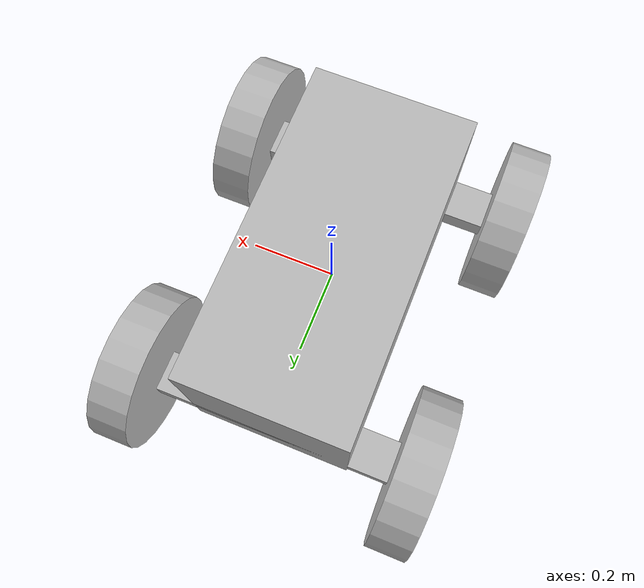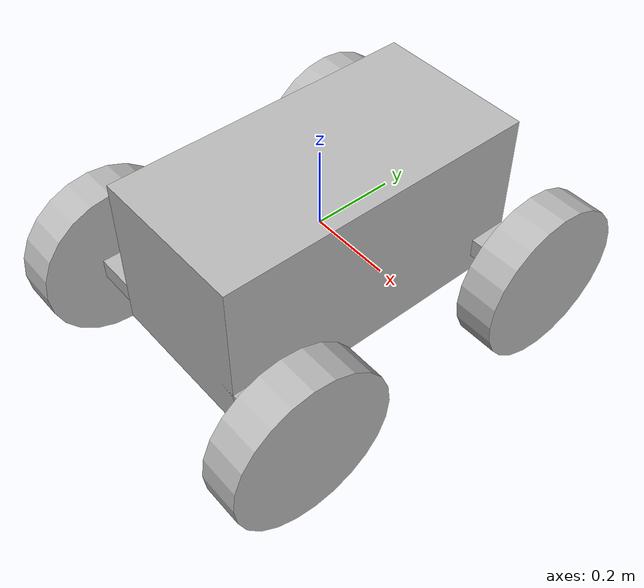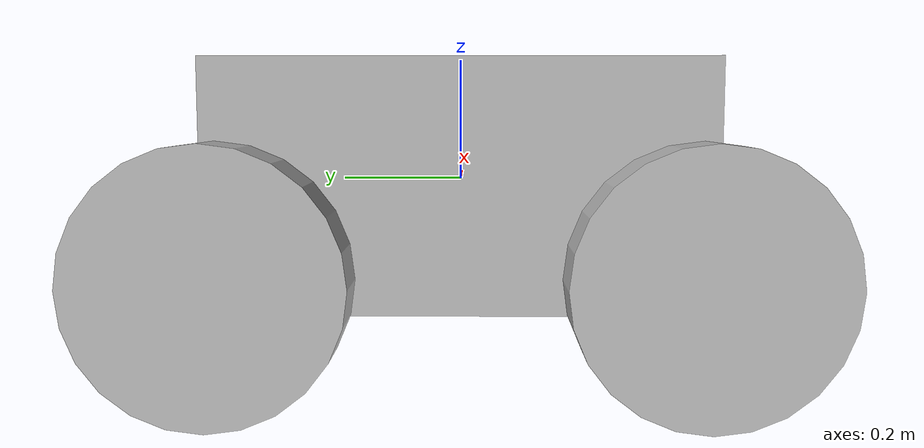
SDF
<sdf version='1.7'>
  <model name='car_suspension'>
    <link name='car_body_1'>
      <inertial>
        <pose>0 0 0 0 -0 0</pose>
        <mass>100</mass>
        <inertia>
          <ixx>10</ixx>
          <ixy>0</ixy>
          <ixz>0</ixz>
          <iyy>10</iyy>
          <iyz>0</iyz>
          <izz>10</izz>
        </inertia>
      </inertial>
      <collision name='car_body_collision'>
        <pose>0 0 0 0 -0 0</pose>
        <geometry>
          <box>
            <size>0.4 0.8 0.2</size>
          </box>
        </geometry>
      </collision>
      <visual name='car_body_visual'>
        <pose>0 0 0 0 -0 0</pose>
        <geometry>
          <box>
            <size>0.4 0.8 0.4</size>
          </box>
        </geometry>
      </visual>
    </link>
    <joint name='suspension_back' type='prismatic'>
      <pose relative_to='car_body_1'>0 -0.35 0 0 -0 0</pose>
      <parent>car_body_1</parent>
      <child>back_wheel_body</child>
      <axis>
        <xyz>0 0 1</xyz>
        <limit>
          <lower>-0.05</lower>
          <upper>0.05</upper>
          <effort>10000</effort>
          <velocity>2</velocity>
        </limit>
        <dynamics>
          <damping>0.8</damping>
          <friction>0</friction>
          <spring_reference>0</spring_reference>
          <spring_stiffness>0</spring_stiffness>
        </dynamics>
      </axis>
    </joint>
    <link name='back_wheel_body'>
      <pose relative_to='suspension_back'>0 0 0 0 -0 0</pose>
      <inertial>
        <pose>0 0 0 0 -0 0</pose>
        <mass>1</mass>
        <inertia>
          <ixx>0.1</ixx>
          <ixy>0</ixy>
          <ixz>0</ixz>
          <iyy>0.1</iyy>
          <iyz>0</iyz>
          <izz>0.1</izz>
        </inertia>
      </inertial>
      <collision name='back_wheel_body_collision'>
        <pose>0 0 -0.125 0 -0 0</pose>
        <geometry>
          <box>
            <size>0.6 0.1 0.05</size>
          </box>
        </geometry>
      </collision>
      <visual name='back_wheel_body_visual'>
        <pose>0 0 -0.125 0 -0 0</pose>
        <geometry>
          <box>
            <size>0.6 0.1 0.05</size>
          </box>
        </geometry>
      </visual>
    </link>
    <joint name='back_body_to_left_wheel' type='revolute'>
      <pose relative_to='back_wheel_body'>-0.3 0 -0.125 0 -0 0</pose>
      <parent>back_wheel_body</parent>
      <child>back_wheel_left</child>
      <axis>
        <xyz>1 0 0</xyz>
        <limit>
          <effort>10000</effort>
          <velocity>2</velocity>
          <lower>-1e+16</lower>
          <upper>1e+16</upper>
        </limit>
        <dynamics>
          <spring_reference>0</spring_reference>
          <spring_stiffness>0</spring_stiffness>
        </dynamics>
      </axis>
    </joint>
    <link name='back_wheel_left'>
      <pose relative_to='back_body_to_left_wheel'>0 0 0 0 -0 0</pose>
      <inertial>
        <pose>0 0 0 0 -0 0</pose>
        <mass>1</mass>
        <inertia>
          <ixx>0.1</ixx>
          <ixy>0</ixy>
          <ixz>0</ixz>
          <iyy>0.1</iyy>
          <iyz>0</iyz>
          <izz>0.1</izz>
        </inertia>
      </inertial>
      <collision name='back_wheel_left_collision'>
        <pose>-0.05 0 0 0 -1.5708 0</pose>
        <geometry>
          <cylinder>
            <length>0.1</length>
            <radius>0.2</radius>
          </cylinder>
        </geometry>
        <surface>
          <friction>
            <ode>
              <mu>0.7</mu>
              <mu2>0.7</mu2>
              <fdir1>1 0 0</fdir1>
            </ode>
          </friction>
          <contact>
            <ode>
              <kp>1e+13</kp>
              <kd>1</kd>
              <max_vel>10</max_vel>
            </ode>
          </contact>
          <bounce>
            <restitution_coefficient>0</restitution_coefficient>
            <threshold>0</threshold>
          </bounce>
        </surface>
      </collision>
      <visual name='back_wheel_left_visual'>
        <pose>-0.05 0 0 0 -1.5708 0</pose>
        <geometry>
          <cylinder>
            <length>0.1</length>
            <radius>0.2</radius>
          </cylinder>
        </geometry>
      </visual>
    </link>
    <joint name='back_body_to_right_wheel' type='revolute'>
      <pose relative_to='back_wheel_body'>0.3 0 -0.125 0 -0 0</pose>
      <parent>back_wheel_body</parent>
      <child>back_wheel_right</child>
      <axis>
        <xyz>1 0 0</xyz>
        <limit>
          <effort>10000</effort>
          <velocity>2</velocity>
          <lower>-1e+16</lower>
          <upper>1e+16</upper>
        </limit>
        <dynamics>
          <spring_reference>0</spring_reference>
          <spring_stiffness>0</spring_stiffness>
        </dynamics>
      </axis>
    </joint>
    <link name='back_wheel_right'>
      <pose relative_to='back_body_to_right_wheel'>0 0 0 0 -0 0</pose>
      <inertial>
        <pose>0 0 0 0 -0 0</pose>
        <mass>1</mass>
        <inertia>
          <ixx>0.1</ixx>
          <ixy>0</ixy>
          <ixz>0</ixz>
          <iyy>0.1</iyy>
          <iyz>0</iyz>
          <izz>0.1</izz>
        </inertia>
      </inertial>
      <collision name='back_wheel_right_collision'>
        <pose>0.05 0 0 0 -1.5708 0</pose>
        <geometry>
          <cylinder>
            <length>0.1</length>
            <radius>0.2</radius>
          </cylinder>
        </geometry>
        <surface>
          <friction>
            <ode>
              <mu>0.7</mu>
              <mu2>0.7</mu2>
              <fdir1>1 0 0</fdir1>
            </ode>
          </friction>
          <contact>
            <ode>
              <kp>1e+13</kp>
              <kd>1</kd>
              <max_vel>10</max_vel>
            </ode>
          </contact>
          <bounce>
            <restitution_coefficient>0</restitution_coefficient>
            <threshold>0</threshold>
          </bounce>
        </surface>
      </collision>
      <visual name='back_wheel_right_visual'>
        <pose>0.05 0 0 0 -1.5708 0</pose>
        <geometry>
          <cylinder>
            <length>0.1</length>
            <radius>0.2</radius>
          </cylinder>
        </geometry>
      </visual>
    </link>
    <joint name='suspension_front' type='prismatic'>
      <pose relative_to='car_body_1'>0 0.35 0 0 -0 0</pose>
      <parent>car_body_1</parent>
      <child>front_wheel_body</child>
      <axis>
        <xyz>0 0 1</xyz>
        <limit>
          <lower>-0.05</lower>
          <upper>0.05</upper>
          <effort>10000</effort>
          <velocity>2</velocity>
        </limit>
        <dynamics>
          <damping>0.8</damping>
          <friction>0</friction>
          <spring_reference>0</spring_reference>
          <spring_stiffness>0</spring_stiffness>
        </dynamics>
      </axis>
    </joint>
    <link name='front_wheel_body'>
      <pose relative_to='suspension_front'>0 0 0 0 -0 0</pose>
      <inertial>
        <pose>0 0 0 0 -0 0</pose>
        <mass>1</mass>
        <inertia>
          <ixx>0.1</ixx>
          <ixy>0</ixy>
          <ixz>0</ixz>
          <iyy>0.1</iyy>
          <iyz>0</iyz>
          <izz>0.1</izz>
        </inertia>
      </inertial>
      <collision name='front_wheel_body_collision'>
        <pose>0 0 -0.125 0 -0 0</pose>
        <geometry>
          <box>
            <size>0.6 0.1 0.05</size>
          </box>
        </geometry>
      </collision>
      <visual name='front_wheel_body_visual'>
        <pose>0 0 -0.125 0 -0 0</pose>
        <geometry>
          <box>
            <size>0.6 0.1 0.05</size>
          </box>
        </geometry>
      </visual>
    </link>
    <joint name='front_body_to_left_wheel' type='revolute'>
      <pose relative_to='front_wheel_body'>-0.3 0 -0.125 0 -0 0</pose>
      <parent>front_wheel_body</parent>
      <child>front_wheel_left</child>
      <axis>
        <xyz>1 0 0</xyz>
        <limit>
          <effort>10000</effort>
          <velocity>2</velocity>
          <lower>-1e+16</lower>
          <upper>1e+16</upper>
        </limit>
        <dynamics>
          <spring_reference>0</spring_reference>
          <spring_stiffness>0</spring_stiffness>
        </dynamics>
      </axis>
    </joint>
    <link name='front_wheel_left'>
      <pose relative_to='front_body_to_left_wheel'>0 0 0 0 -0 0</pose>
      <inertial>
        <pose>0 0 0 0 -0 0</pose>
        <mass>1</mass>
        <inertia>
          <ixx>0.1</ixx>
          <ixy>0</ixy>
          <ixz>0</ixz>
          <iyy>0.1</iyy>
          <iyz>0</iyz>
          <izz>0.1</izz>
        </inertia>
      </inertial>
      <collision name='front_wheel_left_collision'>
        <pose>-0.05 0 0 0 -1.5708 0</pose>
        <geometry>
          <cylinder>
            <length>0.1</length>
            <radius>0.2</radius>
          </cylinder>
        </geometry>
        <surface>
          <friction>
            <ode>
              <mu>0.7</mu>
              <mu2>0.7</mu2>
              <fdir1>1 0 0</fdir1>
            </ode>
          </friction>
          <contact>
            <ode>
              <kp>1e+13</kp>
              <kd>1</kd>
              <max_vel>10</max_vel>
            </ode>
          </contact>
          <bounce>
            <restitution_coefficient>0</restitution_coefficient>
            <threshold>0</threshold>
          </bounce>
        </surface>
      </collision>
      <visual name='front_wheel_left_visual'>
        <pose>-0.05 0 0 0 -1.5708 0</pose>
        <geometry>
          <cylinder>
            <length>0.1</length>
            <radius>0.2</radius>
          </cylinder>
        </geometry>
      </visual>
    </link>
    <joint name='front_body_to_right_wheel' type='revolute'>
      <pose relative_to='front_wheel_body'>0.3 0 -0.125 0 -0 0</pose>
      <parent>front_wheel_body</parent>
      <child>front_wheel_right</child>
      <axis>
        <xyz>1 0 0</xyz>
        <limit>
          <effort>10000</effort>
          <velocity>2</velocity>
          <lower>-1e+16</lower>
          <upper>1e+16</upper>
        </limit>
        <dynamics>
          <spring_reference>0</spring_reference>
          <spring_stiffness>0</spring_stiffness>
        </dynamics>
      </axis>
    </joint>
    <link name='front_wheel_right'>
      <pose relative_to='front_body_to_right_wheel'>0 0 0 0 -0 0</pose>
      <inertial>
        <pose>0 0 0 0 -0 0</pose>
        <mass>1</mass>
        <inertia>
          <ixx>0.1</ixx>
          <ixy>0</ixy>
          <ixz>0</ixz>
          <iyy>0.1</iyy>
          <iyz>0</iyz>
          <izz>0.1</izz>
        </inertia>
      </inertial>
      <collision name='front_wheel_right_collision'>
        <pose>0.05 0 0 0 -1.5708 0</pose>
        <geometry>
          <cylinder>
            <length>0.1</length>
            <radius>0.2</radius>
          </cylinder>
        </geometry>
        <surface>
          <friction>
            <ode>
              <mu>0.7</mu>
              <mu2>0.7</mu2>
              <fdir1>1 0 0</fdir1>
            </ode>
          </friction>
          <contact>
            <ode>
              <kp>1e+13</kp>
              <kd>1</kd>
              <max_vel>10</max_vel>
            </ode>
          </contact>
          <bounce>
            <restitution_coefficient>0</restitution_coefficient>
            <threshold>0</threshold>
          </bounce>
        </surface>
      </collision>
      <visual name='front_wheel_right_visual'>
        <pose>0.05 0 0 0 -1.5708 0</pose>
        <geometry>
          <cylinder>
            <length>0.1</length>
            <radius>0.2</radius>
          </cylinder>
        </geometry>
      </visual>
    </link>
  </model>
</sdf>
